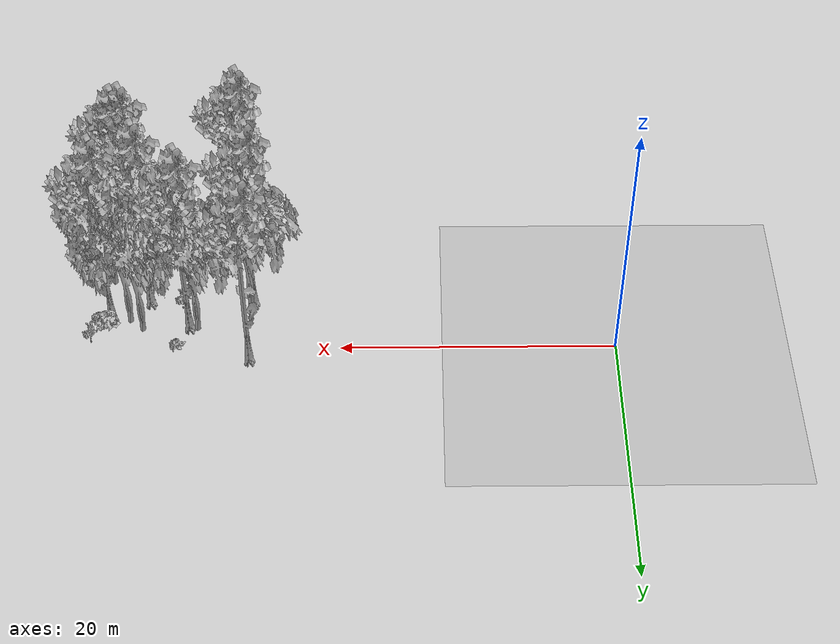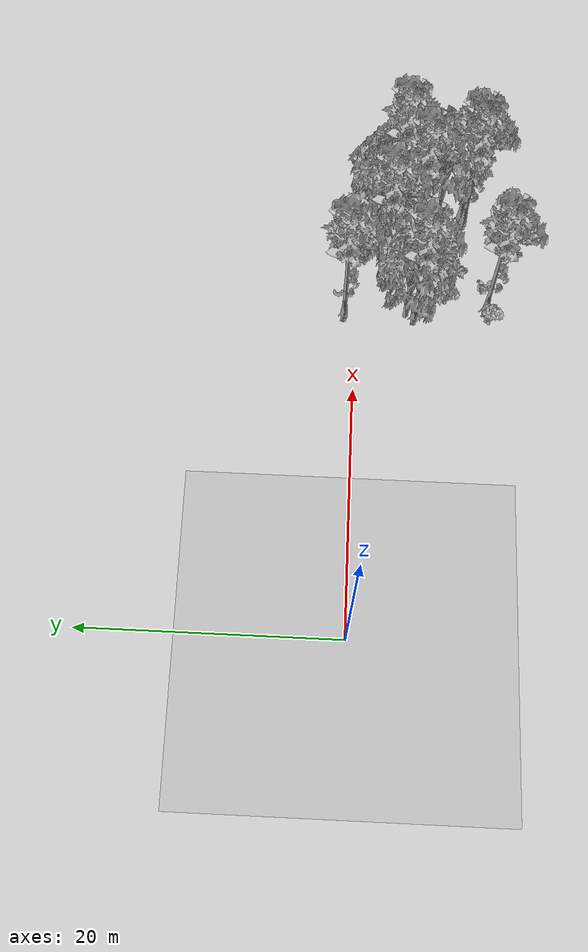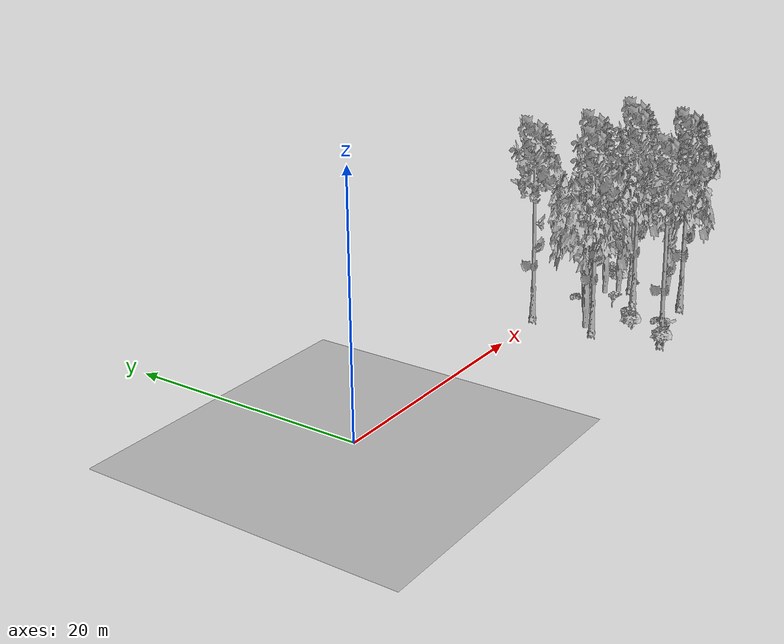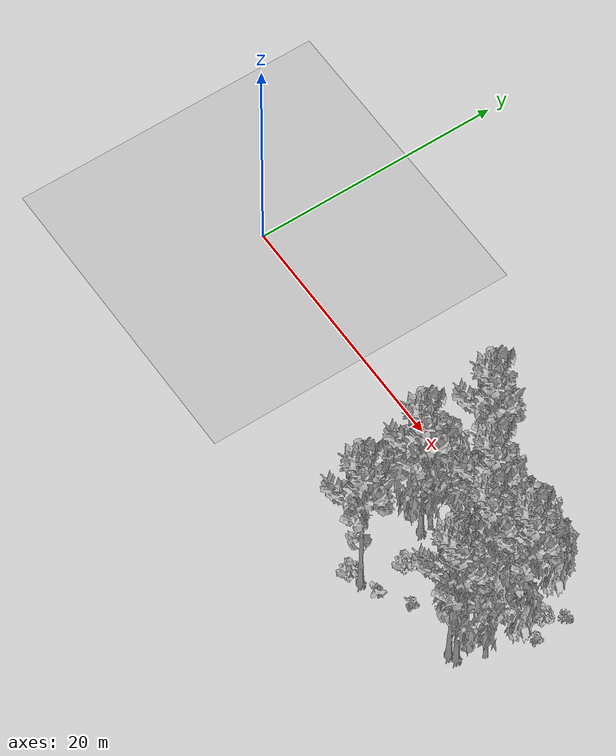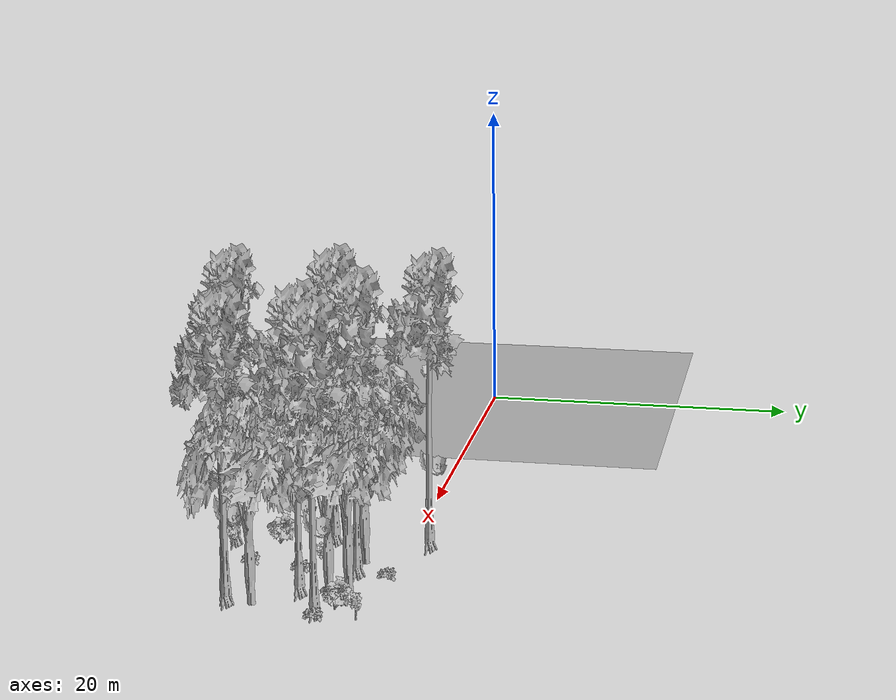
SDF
<sdf version="1.7">
 <world name="default">
  <model name="ground_plane">
   <static>1</static>
   <link name="link">
    <collision name="collision">
     <pose>-50 0 0 0 -0 0</pose>
     <geometry><plane><normal>0 0 1</normal><size>80 80</size></plane></geometry>
     <surface><contact><ode><min_depth>0.01</min_depth><max_vel>0</max_vel></ode></contact></surface>
    </collision>
    <visual name="grass">
     <cast_shadows>0</cast_shadows>
     <geometry>
      <mesh>
       <scale>0.46714285714285714 0.46714285714285714 0.1</scale>
       <uri>file://grass_plane/meshes/grass_plane.dae</uri>
      </mesh>
     </geometry>
    </visual>
   </link>
  </model>
  <model name="Tree 81">
   <static>1</static>
   <pose>34.23788135510122 -4.8292744698265295 0 1.57079 -0 0</pose>
   <link name="link">
    <collision name="collision">
     <geometry><mesh><scale>3.5 5 3.5</scale><uri>model://tree_9/meshes/tree_9.obj</uri></mesh></geometry>
    </collision>
    <visual name="visual">
     <geometry><mesh><scale>3.5 5 3.5</scale><uri>model://tree_9/meshes/tree_9.obj</uri></mesh></geometry>
    </visual>
   </link>
  </model>
  <model name="Tree 198">
   <static>1</static>
   <pose>26.609709564874947 -4.0538211827320225 0 1.57079 -0 0</pose>
   <link name="link">
    <collision name="collision">
     <geometry><mesh><scale>3.5 5 3.5</scale><uri>model://tree_2/meshes/tree_2.obj</uri></mesh></geometry>
    </collision>
    <visual name="visual">
     <geometry><mesh><scale>3.5 5 3.5</scale><uri>model://tree_2/meshes/tree_2.obj</uri></mesh></geometry>
    </visual>
   </link>
  </model>
  <model name="Tree 201">
   <static>1</static>
   <pose>35.41194055435635 -2.821719347500448 0 1.57079 -0 0</pose>
   <link name="link">
    <collision name="collision">
     <geometry><mesh><scale>3.5 5 3.5</scale><uri>model://tree_2/meshes/tree_2.obj</uri></mesh></geometry>
    </collision>
    <visual name="visual">
     <geometry><mesh><scale>3.5 5 3.5</scale><uri>model://tree_2/meshes/tree_2.obj</uri></mesh></geometry>
    </visual>
   </link>
  </model>
  <model name="Tree 214">
   <static>1</static>
   <pose>36.944219905786255 -3.2828045976798776 0 1.57079 -0 0</pose>
   <link name="link">
    <collision name="collision">
     <geometry><mesh><scale>3.5 5 3.5</scale><uri>model://tree_9/meshes/tree_9.obj</uri></mesh></geometry>
    </collision>
    <visual name="visual">
     <geometry><mesh><scale>3.5 5 3.5</scale><uri>model://tree_9/meshes/tree_9.obj</uri></mesh></geometry>
    </visual>
   </link>
  </model>
  <model name="Tree 308">
   <static>1</static>
   <pose>36.994736640552574 -6.772157239269411 0 1.57079 -0 0</pose>
   <link name="link">
    <collision name="collision">
     <geometry><mesh><scale>3.5 5 3.5</scale><uri>model://tree_2/meshes/tree_2.obj</uri></mesh></geometry>
    </collision>
    <visual name="visual">
     <geometry><mesh><scale>3.5 5 3.5</scale><uri>model://tree_2/meshes/tree_2.obj</uri></mesh></geometry>
    </visual>
   </link>
  </model>
  <model name="Tree 331">
   <static>1</static>
   <pose>36.07871998519384 -8.466965494794394 0 1.57079 -0 0</pose>
   <link name="link">
    <collision name="collision">
     <geometry><mesh><scale>3.5 5 3.5</scale><uri>model://tree_9/meshes/tree_9.obj</uri></mesh></geometry>
    </collision>
    <visual name="visual">
     <geometry><mesh><scale>3.5 5 3.5</scale><uri>model://tree_9/meshes/tree_9.obj</uri></mesh></geometry>
    </visual>
   </link>
  </model>
  <model name="Tree 353">
   <static>1</static>
   <pose>31.14013997213955 -2.2962000520401986 0 1.57079 -0 0</pose>
   <link name="link">
    <collision name="collision">
     <geometry><mesh><scale>3.5 5 3.5</scale><uri>model://tree_9/meshes/tree_9.obj</uri></mesh></geometry>
    </collision>
    <visual name="visual">
     <geometry><mesh><scale>3.5 5 3.5</scale><uri>model://tree_9/meshes/tree_9.obj</uri></mesh></geometry>
    </visual>
   </link>
  </model>
  <model name="Tree 378">
   <static>1</static>
   <pose>34.43183680450612 -1.9686812648104919 0 1.57079 -0 0</pose>
   <link name="link">
    <collision name="collision">
     <geometry><mesh><scale>3.5 5 3.5</scale><uri>model://tree_2/meshes/tree_2.obj</uri></mesh></geometry>
    </collision>
    <visual name="visual">
     <geometry><mesh><scale>3.5 5 3.5</scale><uri>model://tree_2/meshes/tree_2.obj</uri></mesh></geometry>
    </visual>
   </link>
  </model>
  <model name="Tree 440">
   <static>1</static>
   <pose>26.54666128770117 -4.734347711457431 0 1.57079 -0 0</pose>
   <link name="link">
    <collision name="collision">
     <geometry><mesh><scale>3.5 5 3.5</scale><uri>model://tree_9/meshes/tree_9.obj</uri></mesh></geometry>
    </collision>
    <visual name="visual">
     <geometry><mesh><scale>3.5 5 3.5</scale><uri>model://tree_9/meshes/tree_9.obj</uri></mesh></geometry>
    </visual>
   </link>
  </model>
  <model name="Tree 500">
   <static>1</static>
   <pose>30.39970622744009 -2.003616435721625 0 1.57079 -0 0</pose>
   <link name="link">
    <collision name="collision">
     <geometry><mesh><scale>3.5 5 3.5</scale><uri>model://tree_2/meshes/tree_2.obj</uri></mesh></geometry>
    </collision>
    <visual name="visual">
     <geometry><mesh><scale>3.5 5 3.5</scale><uri>model://tree_2/meshes/tree_2.obj</uri></mesh></geometry>
    </visual>
   </link>
  </model>
  <model name="Tree 535">
   <static>1</static>
   <pose>26.583621018469685 0.9031445126019193 0 1.57079 -0 0</pose>
   <link name="link">
    <collision name="collision">
     <geometry><mesh><scale>3.5 5 3.5</scale><uri>model://tree_9/meshes/tree_9.obj</uri></mesh></geometry>
    </collision>
    <visual name="visual">
     <geometry><mesh><scale>3.5 5 3.5</scale><uri>model://tree_9/meshes/tree_9.obj</uri></mesh></geometry>
    </visual>
   </link>
  </model>
  <model name="Tree 573">
   <static>1</static>
   <pose>27.529623360493105 -10.485750952635541 0 1.57079 -0 0</pose>
   <link name="link">
    <collision name="collision">
     <geometry><mesh><scale>3.5 5 3.5</scale><uri>model://tree_9/meshes/tree_9.obj</uri></mesh></geometry>
    </collision>
    <visual name="visual">
     <geometry><mesh><scale>3.5 5 3.5</scale><uri>model://tree_9/meshes/tree_9.obj</uri></mesh></geometry>
    </visual>
   </link>
  </model>
  <model name="Tree 638">
   <static>1</static>
   <pose>35.537528016058545 -8.7028883139841 0 1.57079 -0 0</pose>
   <link name="link">
    <collision name="collision">
     <geometry><mesh><scale>3.5 5 3.5</scale><uri>model://tree_9/meshes/tree_9.obj</uri></mesh></geometry>
    </collision>
    <visual name="visual">
     <geometry><mesh><scale>3.5 5 3.5</scale><uri>model://tree_9/meshes/tree_9.obj</uri></mesh></geometry>
    </visual>
   </link>
  </model>
  <model name="Bush 36">
   <static>1</static>
   <pose>28.396627689186303 -7.518018473031034 0 1.57079 -0 0</pose>
   <link name="link">
    <collision name="collision">
     <geometry><mesh><scale>2 2 2</scale><uri>model://bush_1/meshes/bush_1.obj</uri></mesh></geometry>
     <surface><contact><collide_without_contact>false</collide_without_contact></contact></surface>
    </collision>
    <visual name="visual">
     <geometry><mesh><scale>2 2 2</scale><uri>model://bush_1/meshes/bush_1.obj</uri></mesh></geometry>
    </visual>
   </link>
  </model>
  <model name="Bush 65">
   <static>1</static>
   <pose>31.778793017759043 -4.038045838358848 0 1.57079 -0 0</pose>
   <link name="link">
    <collision name="collision">
     <geometry><mesh><scale>2 2 2</scale><uri>model://bush_5/meshes/bush_5.obj</uri></mesh></geometry>
     <surface><contact><collide_without_contact>false</collide_without_contact></contact></surface>
    </collision>
    <visual name="visual">
     <geometry><mesh><scale>2 2 2</scale><uri>model://bush_5/meshes/bush_5.obj</uri></mesh></geometry>
    </visual>
   </link>
  </model>
  <model name="Bush 75">
   <static>1</static>
   <pose>37.04430988410489 -2.1366283118385283 0 1.57079 -0 0</pose>
   <link name="link">
    <collision name="collision">
     <geometry><mesh><scale>2 2 2</scale><uri>model://bush_1/meshes/bush_1.obj</uri></mesh></geometry>
     <surface><contact><collide_without_contact>false</collide_without_contact></contact></surface>
    </collision>
    <visual name="visual">
     <geometry><mesh><scale>2 2 2</scale><uri>model://bush_1/meshes/bush_1.obj</uri></mesh></geometry>
    </visual>
   </link>
  </model>
  <model name="Bush 288">
   <static>1</static>
   <pose>30.903738364914886 -8.585957710169822 0 1.57079 -0 0</pose>
   <link name="link">
    <collision name="collision">
     <geometry><mesh><scale>2 2 2</scale><uri>model://bush_2/meshes/bush_2.obj</uri></mesh></geometry>
     <surface><contact><collide_without_contact>false</collide_without_contact></contact></surface>
    </collision>
    <visual name="visual">
     <geometry><mesh><scale>2 2 2</scale><uri>model://bush_2/meshes/bush_2.obj</uri></mesh></geometry>
    </visual>
   </link>
  </model>
  <model name="Bush 317">
   <static>1</static>
   <pose>31.546798728855535 -5.524869075121266 0 1.57079 -0 0</pose>
   <link name="link">
    <collision name="collision">
     <geometry><mesh><scale>2 2 2</scale><uri>model://bush_2/meshes/bush_2.obj</uri></mesh></geometry>
     <surface><contact><collide_without_contact>false</collide_without_contact></contact></surface>
    </collision>
    <visual name="visual">
     <geometry><mesh><scale>2 2 2</scale><uri>model://bush_2/meshes/bush_2.obj</uri></mesh></geometry>
    </visual>
   </link>
  </model>
  <model name="Bush 333">
   <static>1</static>
   <pose>26.741634297439035 -11.019127697039536 0 1.57079 -0 0</pose>
   <link name="link">
    <collision name="collision">
     <geometry><mesh><scale>2 2 2</scale><uri>model://bush_1/meshes/bush_1.obj</uri></mesh></geometry>
     <surface><contact><collide_without_contact>false</collide_without_contact></contact></surface>
    </collision>
    <visual name="visual">
     <geometry><mesh><scale>2 2 2</scale><uri>model://bush_1/meshes/bush_1.obj</uri></mesh></geometry>
    </visual>
   </link>
  </model>
  <model name="Bush 395">
   <static>1</static>
   <pose>37.91314249120224 -3.1175379690773823 0 1.57079 -0 0</pose>
   <link name="link">
    <collision name="collision">
     <geometry><mesh><scale>2 2 2</scale><uri>model://bush_2/meshes/bush_2.obj</uri></mesh></geometry>
     <surface><contact><collide_without_contact>false</collide_without_contact></contact></surface>
    </collision>
    <visual name="visual">
     <geometry><mesh><scale>2 2 2</scale><uri>model://bush_2/meshes/bush_2.obj</uri></mesh></geometry>
    </visual>
   </link>
  </model>
  <model name="Bush 430">
   <static>1</static>
   <pose>38.19513174572657 -0.685048448931525 0 1.57079 -0 0</pose>
   <link name="link">
    <collision name="collision">
     <geometry><mesh><scale>2 2 2</scale><uri>model://bush_5/meshes/bush_5.obj</uri></mesh></geometry>
     <surface><contact><collide_without_contact>false</collide_without_contact></contact></surface>
    </collision>
    <visual name="visual">
     <geometry><mesh><scale>2 2 2</scale><uri>model://bush_5/meshes/bush_5.obj</uri></mesh></geometry>
    </visual>
   </link>
  </model>
  <model name="Bush 523">
   <static>1</static>
   <pose>31.92257355678248 -0.42826403308853855 0 1.57079 -0 0</pose>
   <link name="link">
    <collision name="collision">
     <geometry><mesh><scale>2 2 2</scale><uri>model://bush_2/meshes/bush_2.obj</uri></mesh></geometry>
     <surface><contact><collide_without_contact>false</collide_without_contact></contact></surface>
    </collision>
    <visual name="visual">
     <geometry><mesh><scale>2 2 2</scale><uri>model://bush_2/meshes/bush_2.obj</uri></mesh></geometry>
    </visual>
   </link>
  </model>
  <model name="Bush 580">
   <static>1</static>
   <pose>29.237566062712744 -10.191174929791256 0 1.57079 -0 0</pose>
   <link name="link">
    <collision name="collision">
     <geometry><mesh><scale>2 2 2</scale><uri>model://bush_0/meshes/bush_0.obj</uri></mesh></geometry>
     <surface><contact><collide_without_contact>false</collide_without_contact></contact></surface>
    </collision>
    <visual name="visual">
     <geometry><mesh><scale>2 2 2</scale><uri>model://bush_0/meshes/bush_0.obj</uri></mesh></geometry>
    </visual>
   </link>
  </model>
 </world>
</sdf>
